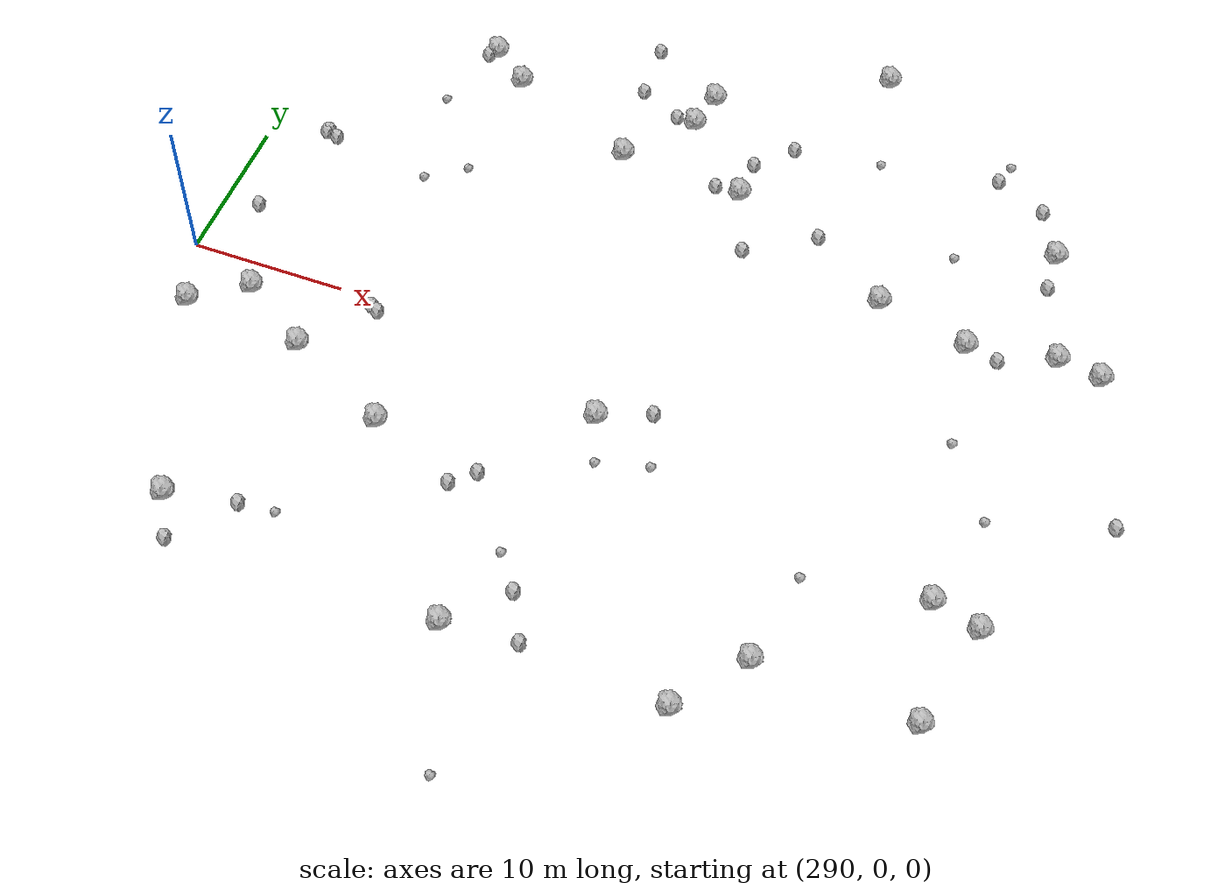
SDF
<sdf version="1.6">
 <world name="default">
  <include><uri>model://sun</uri></include>
  <model name="rock1_8_3">
   <include><uri>model://rock1</uri><pose>343.0010716139913 10.307469124548973 0.5 0 0 0</pose></include>
  </model>
  <model name="rock1_8_4">
   <include><uri>model://rock1</uri><pose>303.7273765929385 20.41854790554551 0.5 0 0 0</pose></include>
  </model>
  <model name="rock1_8_5">
   <include><uri>model://rock1</uri><pose>315.8070050842894 20.892256015936674 0.5 0 0 0</pose></include>
  </model>
  <model name="rock1_8_6">
   <include><uri>model://rock1</uri><pose>326.6560549150934 29.11047227124954 0.5 0 0 0</pose></include>
  </model>
  <model name="rock1_8_7">
   <include><uri>model://rock1</uri><pose>312.3700903476023 16.700882696347115 0.5 0 0 0</pose></include>
  </model>
  <model name="rock1_8_8">
   <include><uri>model://rock1</uri><pose>318.4530703992655 -3.5680467617348164 0.5 0 0 0</pose></include>
  </model>
  <model name="rock1_8_9">
   <include><uri>model://rock1</uri><pose>337.5198993116993 9.357265094076972 0.5 0 0 0</pose></include>
  </model>
  <model name="rock1_8_10">
   <include><uri>model://rock1</uri><pose>294.8179386171144 -1.8541826328721527 0.5 0 0 0</pose></include>
  </model>
  <model name="rock1_8_11">
   <include><uri>model://rock1</uri><pose>291.56262808077753 -4.180883686083334 0.5 0 0 0</pose></include>
  </model>
  <model name="rock1_8_12">
   <include><uri>model://rock1</uri><pose>342.3774066164403 -16.480144752518164 0.5 0 0 0</pose></include>
  </model>
  <model name="rock1_8_13">
   <include><uri>model://rock1</uri><pose>299.46556114698194 -4.920908830147397 0.5 0 0 0</pose></include>
  </model>
  <model name="rock1_8_14">
   <include><uri>model://rock1</uri><pose>320.57945183688605 16.147398650036827 0.5 0 0 0</pose></include>
  </model>
  <model name="rock1_8_15">
   <include><uri>model://rock1</uri><pose>316.3203037195305 23.454426662420524 0.5 0 0 0</pose></include>
  </model>
  <model name="rock1_8_16">
   <include><uri>model://rock1</uri><pose>332.48280459180944 -15.987145882292458 0.5 0 0 0</pose></include>
  </model>
  <model name="rock1_8_17">
   <include><uri>model://rock1</uri><pose>306.33659255280554 -8.43921474054207 0.5 0 0 0</pose></include>
  </model>
  <model name="rock1_8_18">
   <include><uri>model://rock1</uri><pose>340.85319993197373 18.196233986488238 0.5 0 0 0</pose></include>
  </model>
  <model name="rock1_8_19">
   <include><uri>model://rock1</uri><pose>315.49146124882066 -19.849518694413366 0.5 0 0 0</pose></include>
  </model>
  <model name="rock1_8_20">
   <include><uri>model://rock1</uri><pose>301.1506124671766 22.415611765247945 0.5 0 0 0</pose></include>
  </model>
  <model name="rock1_8_21">
   <include><uri>model://rock1</uri><pose>343.78436865351 -9.665151856820273 0.5 0 0 0</pose></include>
  </model>
  <model name="rock1_8_22">
   <include><uri>model://rock1</uri><pose>345.79527486709355 9.820902891068663 0.5 0 0 0</pose></include>
  </model>
  <model name="rock1_8_23">
   <include><uri>model://rock1</uri><pose>340.78931900355155 -8.805040910041605 0.5 0 0 0</pose></include>
  </model>
  <model name="rock1_8_24">
   <include><uri>model://rock1</uri><pose>331.58465431346195 10.800387893241933 0.5 0 0 0</pose></include>
  </model>
  <model name="rock1_8_25">
   <include><uri>model://rock1</uri><pose>297.00675787529565 -17.567972930088885 0.5 0 0 0</pose></include>
  </model>
  <model name="rock1_8_26">
   <include><uri>model://rock1</uri><pose>329.3306635108199 -20.315145814238797 0.5 0 0 0</pose></include>
  </model>
  <model name="rock2_8_0">
   <include><uri>model://rock2</uri><pose>298.5873737435531 -20.362308985108907 0.3 0 0 0</pose></include>
  </model>
  <model name="rock2_8_1">
   <include><uri>model://rock2</uri><pose>320.1903837662362 -19.550069142987546 0.3 0 0 0</pose></include>
  </model>
  <model name="rock2_8_2">
   <include><uri>model://rock2</uri><pose>322.3165744995228 11.6585305537212 0.3 0 0 0</pose></include>
  </model>
  <model name="rock2_8_3">
   <include><uri>model://rock2</uri><pose>318.9582118938177 16.119248289228373 0.3 0 0 0</pose></include>
  </model>
  <model name="rock2_8_4">
   <include><uri>model://rock2</uri><pose>300.7404866151839 21.83060100682512 0.3 0 0 0</pose></include>
  </model>
  <model name="rock2_8_5">
   <include><uri>model://rock2</uri><pose>294.4123603238564 11.3751045145953 0.3 0 0 0</pose></include>
  </model>
  <model name="rock2_8_6">
   <include><uri>model://rock2</uri><pose>321.625502653533 -2.2560076008830023 0.3 0 0 0</pose></include>
  </model>
  <model name="rock2_8_7">
   <include><uri>model://rock2</uri><pose>341.01381555515275 15.493618695559022 0.3 0 0 0</pose></include>
  </model>
  <model name="rock2_8_8">
   <include><uri>model://rock2</uri><pose>318.59713627661375 -16.58665815670642 0.3 0 0 0</pose></include>
  </model>
  <model name="rock2_8_9">
   <include><uri>model://rock2</uri><pose>314.56175791869 20.924101921175627 0.3 0 0 0</pose></include>
  </model>
  <model name="rock2_8_10">
   <include><uri>model://rock2</uri><pose>311.4462606533625 26.21648180642488 0.3 0 0 0</pose></include>
  </model>
  <model name="rock2_8_11">
   <include><uri>model://rock2</uri><pose>293.68726446206665 11.763495346184811 0.3 0 0 0</pose></include>
  </model>
  <model name="rock2_8_12">
   <include><uri>model://rock2</uri><pose>339.149096187598 21.402308378366783 0.3 0 0 0</pose></include>
  </model>
  <model name="rock2_8_13">
   <include><uri>model://rock2</uri><pose>292.2857390448403 4.300199029112235 0.3 0 0 0</pose></include>
  </model>
  <model name="rock2_8_14">
   <include><uri>model://rock2</uri><pose>293.6014089428243 11.594253403728779 0.3 0 0 0</pose></include>
  </model>
  <model name="rock2_8_15">
   <include><uri>model://rock2</uri><pose>311.7272464137884 22.331515384252057 0.3 0 0 0</pose></include>
  </model>
  <model name="rock2_8_16">
   <include><uri>model://rock2</uri><pose>322.70547015549363 20.907041869672987 0.3 0 0 0</pose></include>
  </model>
  <model name="rock2_8_17">
   <include><uri>model://rock2</uri><pose>312.1873630056743 -11.092557653559687 0.3 0 0 0</pose></include>
  </model>
  <model name="rock2_8_18">
   <include><uri>model://rock2</uri><pose>302.4637969335326 -0.6829641342775652 0.3 0 0 0</pose></include>
  </model>
  <model name="rock2_8_19">
   <include><uri>model://rock2</uri><pose>339.61853749371306 8.86936359402906 0.3 0 0 0</pose></include>
  </model>
  <model name="rock2_8_20">
   <include><uri>model://rock2</uri><pose>301.435594567254 -16.7340127652131 0.3 0 0 0</pose></include>
  </model>
  <model name="rock2_8_21">
   <include><uri>model://rock2</uri><pose>320.65609365632866 18.735280659197855 0.3 0 0 0</pose></include>
  </model>
  <model name="rock2_8_22">
   <include><uri>model://rock2</uri><pose>349.217039320844 -0.38249189583205734 0.3 0 0 0</pose></include>
  </model>
  <model name="rock2_8_23">
   <include><uri>model://rock2</uri><pose>326.4627592302093 14.35939259488547 0.3 0 0 0</pose></include>
  </model>
  <model name="rock2_8_24">
   <include><uri>model://rock2</uri><pose>335.8272838608067 22.975145591217867 0.3 0 0 0</pose></include>
  </model>
  <model name="rock2_8_25">
   <include><uri>model://rock2</uri><pose>302.9830944130129 -0.9639051149240778 0.3 0 0 0</pose></include>
  </model>
  <model name="rock2_8_26">
   <include><uri>model://rock2</uri><pose>313.50900551660976 -9.83274815765402 0.3 0 0 0</pose></include>
  </model>
  <model name="rock3_8_0">
   <include><uri>model://rock3</uri><pose>322.7866133006875 -5.883460756784025 0.2 0 0 0</pose></include>
  </model>
  <model name="rock3_8_1">
   <include><uri>model://rock3</uri><pose>318.8529773105939 -28.706418983222253 0.2 0 0 0</pose></include>
  </model>
  <model name="rock3_8_2">
   <include><uri>model://rock3</uri><pose>338.75296270049046 2.0182468243638354 0.2 0 0 0</pose></include>
  </model>
  <model name="rock3_8_3">
   <include><uri>model://rock3</uri><pose>328.28824330548224 21.66776668282374 0.2 0 0 0</pose></include>
  </model>
  <model name="rock3_8_4">
   <include><uri>model://rock3</uri><pose>301.0851288565744 10.225659958338511 0.2 0 0 0</pose></include>
  </model>
  <model name="rock3_8_5">
   <include><uri>model://rock3</uri><pose>333.3206470534684 -9.981829092089502 0.2 0 0 0</pose></include>
  </model>
  <model name="rock3_8_6">
   <include><uri>model://rock3</uri><pose>299.6685737123225 17.088907515130373 0.2 0 0 0</pose></include>
  </model>
  <model name="rock3_8_7">
   <include><uri>model://rock3</uri><pose>342.0562850960307 -2.6552572630050406 0.2 0 0 0</pose></include>
  </model>
  <model name="rock3_8_8">
   <include><uri>model://rock3</uri><pose>303.67094341641746 -16.532614515319388 0.2 0 0 0</pose></include>
  </model>
  <model name="rock3_8_9">
   <include><uri>model://rock3</uri><pose>316.8887776975146 -14.423879956975602 0.2 0 0 0</pose></include>
  </model>
  <model name="rock3_8_10">
   <include><uri>model://rock3</uri><pose>319.58313033431614 -6.732074198472759 0.2 0 0 0</pose></include>
  </model>
  <model name="rock3_8_11">
   <include><uri>model://rock3</uri><pose>334.89298103803026 15.766588110252044 0.2 0 0 0</pose></include>
  </model>
  <model name="rock3_8_12">
   <include><uri>model://rock3</uri><pose>303.4451642127783 11.928305490926064 0.2 0 0 0</pose></include>
  </model>
  <model name="rock3_8_13">
   <include><uri>model://rock3</uri><pose>336.22004861777094 24.421063024952588 0.2 0 0 0</pose></include>
  </model>
 </world>
</sdf>
